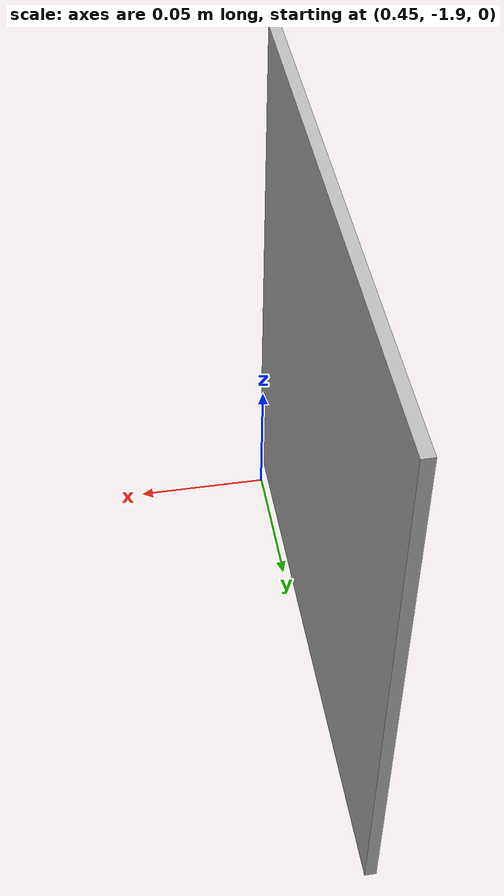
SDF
<?xml version="1.0" ?><sdf version="1.4">
  <model name="qr_template">
    <static>true</static>
    <link name="link">
      <visual name="visual">
        <geometry>
          <mesh>
            <uri>model://qr_template/meshes/qr_template.dae</uri>
          <scale>0.4 0.4 0.4</scale></mesh>
        </geometry>
      </visual>
    </link>
    <pose>0.445343 -1.8179 0 0 -0 0</pose>
  </model>
</sdf>
